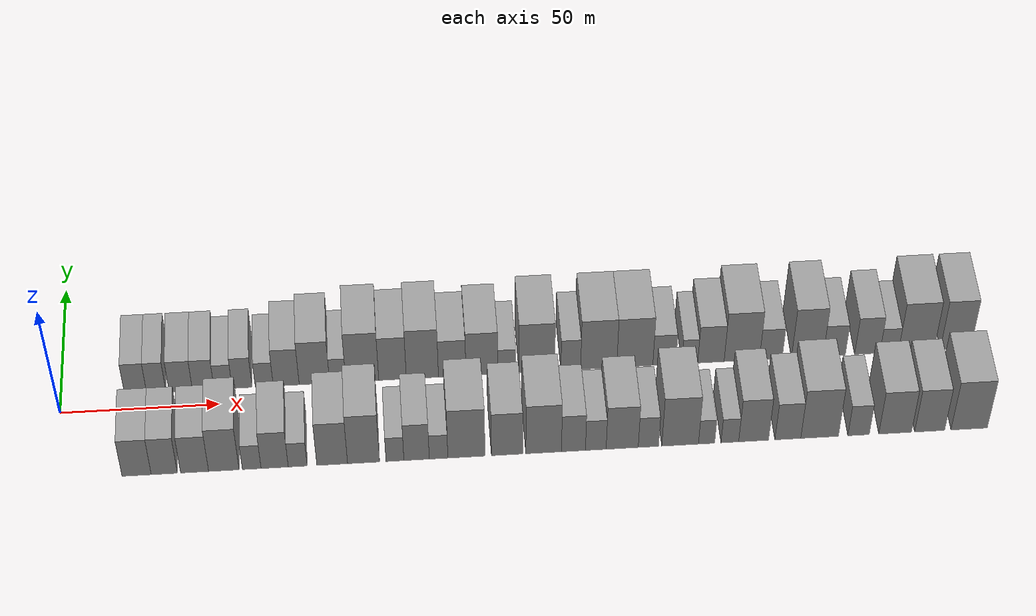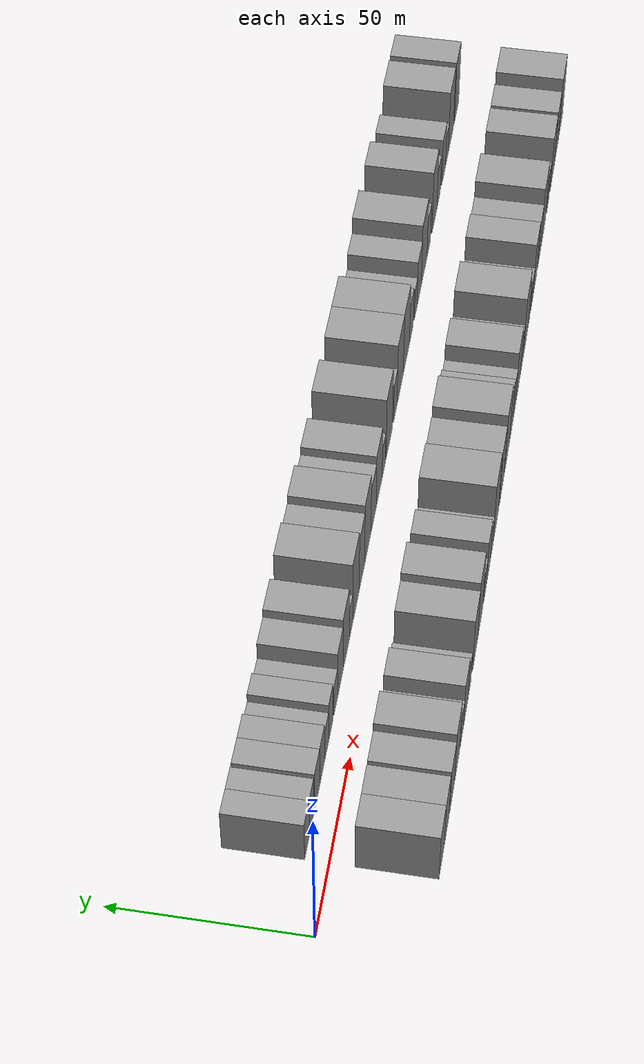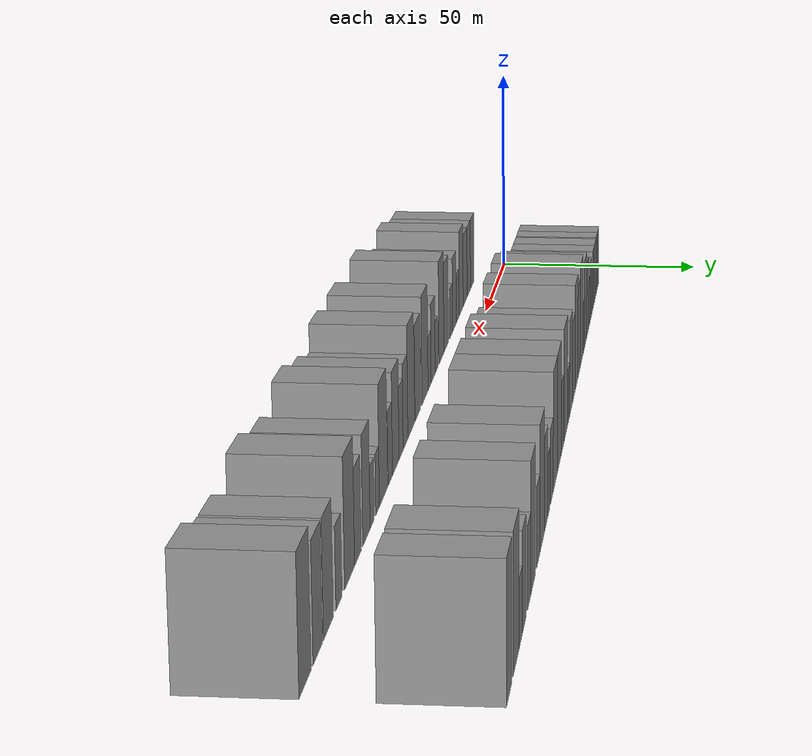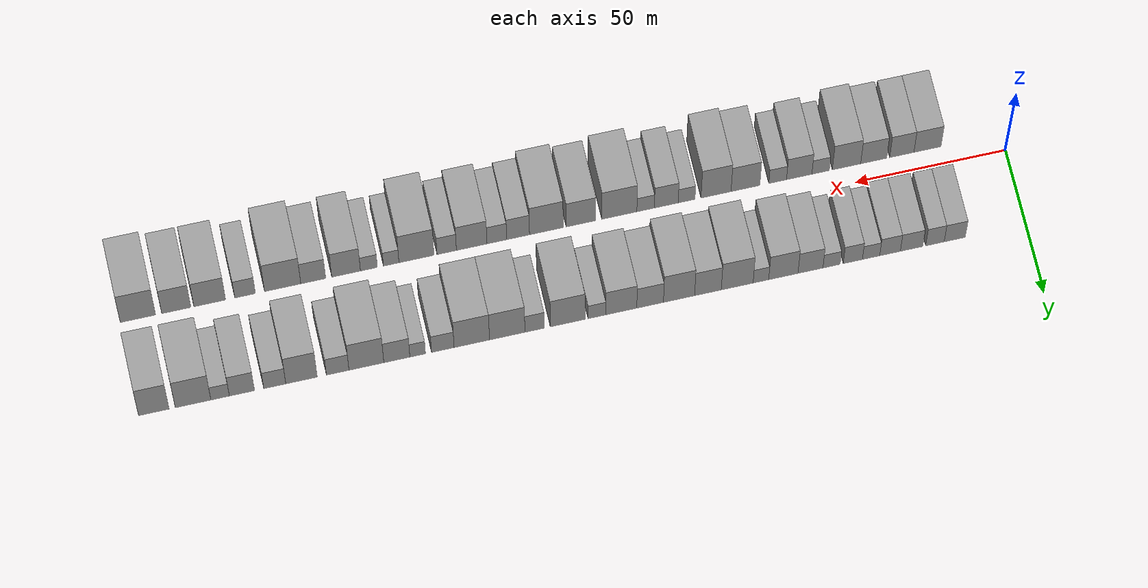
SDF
<sdf version="1.6">
 <world name="default">
  <scene>
   <sky><clouds><speed>12</speed></clouds></sky>
   <ambient>0.4 0.4 0.4 1</ambient>
   <background>0.7 0.7 0.7 1</background>
   <shadows>1</shadows>
  </scene>
  <gravity>0 0 -9.8066</gravity>
  <magnetic_field>6e-06 2.3e-05 -4.2e-05</magnetic_field>
  <physics default="0" name="default_physics" type="ode">
   <ode>
    <solver>
     <type>quick</type>
     <iters>10</iters>
     <sor>1.0</sor>
     <use_dynamic_moi_rescaling>0</use_dynamic_moi_rescaling>
    </solver>
    <constraints>
     <cfm>0</cfm>
     <erp>0.2</erp>
     <contact_max_correcting_vel>100</contact_max_correcting_vel>
     <contact_surface_layer>0.001</contact_surface_layer>
    </constraints>
   </ode>
   <max_step_size>0.004</max_step_size>
   <real_time_factor>1</real_time_factor>
   <real_time_update_rate>250</real_time_update_rate>
  </physics>
  <light name="sun" type="directional">
   <pose>0 0 10 0 0 0</pose>
   <diffuse>0.8 0.8 0.8 1</diffuse>
   <specular>0.2 0.2 0.2 1</specular>
   <attenuation>
    <range>1000</range>
    <constant>0.9</constant>
    <linear>0.01</linear>
    <quadratic>0.001</quadratic>
   </attenuation>
   <direction>-0.5 0.1 -0.9</direction>
  </light>
  <model name="building_1">
   <static>1</static>
   <pose>23.4826 16.0000 0 0.000000 0.000000 1.570796</pose>
   <link name="link">
    <pose>0 0 7.50 0 0 0</pose>
    <collision name="collision"><geometry><box><size>20.0000 6.9651 15.0000</size></box></geometry></collision>
    <visual name="visual">
     <cast_shadows>0</cast_shadows>
     <geometry><box><size>20.0000 6.9651 15.0000</size></box></geometry>
     <material>
      <script>
       <uri>model://grey_wall/materials/scripts</uri>
       <uri>model://grey_wall/materials/textures</uri>
       <name>vrc/grey_wall</name>
      </script>
     </material>
    </visual>
   </link>
  </model>
  <model name="building_2">
   <static>1</static>
   <pose>30.0174 16.0000 0 0.000000 0.000000 1.570796</pose>
   <link name="link">
    <pose>0 0 7.50 0 0 0</pose>
    <collision name="collision"><geometry><box><size>20.0000 6.1046 15.0000</size></box></geometry></collision>
    <visual name="visual">
     <cast_shadows>0</cast_shadows>
     <geometry><box><size>20.0000 6.1046 15.0000</size></box></geometry>
     <material>
      <script>
       <uri>model://grey_wall/materials/scripts</uri>
       <uri>model://grey_wall/materials/textures</uri>
       <name>vrc/grey_wall</name>
      </script>
     </material>
    </visual>
   </link>
  </model>
  <model name="building_3">
   <static>1</static>
   <pose>37.7684 16.0000 0 0.000000 0.000000 1.570796</pose>
   <link name="link">
    <pose>0 0 7.50 0 0 0</pose>
    <collision name="collision"><geometry><box><size>20.0000 7.3974 15.0000</size></box></geometry></collision>
    <visual name="visual">
     <cast_shadows>0</cast_shadows>
     <geometry><box><size>20.0000 7.3974 15.0000</size></box></geometry>
     <material>
      <script>
       <uri>model://grey_wall/materials/scripts</uri>
       <uri>model://grey_wall/materials/textures</uri>
       <name>vrc/grey_wall</name>
      </script>
     </material>
    </visual>
   </link>
  </model>
  <model name="building_4">
   <static>1</static>
   <pose>44.8814 16.0000 0 0.000000 0.000000 1.570796</pose>
   <link name="link">
    <pose>0 0 7.50 0 0 0</pose>
    <collision name="collision"><geometry><box><size>20.0000 6.8285 15.0000</size></box></geometry></collision>
    <visual name="visual">
     <cast_shadows>0</cast_shadows>
     <geometry><box><size>20.0000 6.8285 15.0000</size></box></geometry>
     <material>
      <script>
       <uri>model://grey_wall/materials/scripts</uri>
       <uri>model://grey_wall/materials/textures</uri>
       <name>vrc/grey_wall</name>
      </script>
     </material>
    </visual>
   </link>
  </model>
  <model name="building_5">
   <static>1</static>
   <pose>51.1552 16.0000 0 0.000000 0.000000 1.570796</pose>
   <link name="link">
    <pose>0 0 6.00 0 0 0</pose>
    <collision name="collision"><geometry><box><size>20.0000 5.7192 12.0000</size></box></geometry></collision>
    <visual name="visual">
     <cast_shadows>0</cast_shadows>
     <geometry><box><size>20.0000 5.7192 12.0000</size></box></geometry>
     <material>
      <script>
       <uri>model://grey_wall/materials/scripts</uri>
       <uri>model://grey_wall/materials/textures</uri>
       <name>vrc/grey_wall</name>
      </script>
     </material>
    </visual>
   </link>
  </model>
  <model name="building_6">
   <static>1</static>
   <pose>57.1773 16.0000 0 0.000000 0.000000 1.570796</pose>
   <link name="link">
    <pose>0 0 7.50 0 0 0</pose>
    <collision name="collision"><geometry><box><size>20.0000 6.3250 15.0000</size></box></geometry></collision>
    <visual name="visual">
     <cast_shadows>0</cast_shadows>
     <geometry><box><size>20.0000 6.3250 15.0000</size></box></geometry>
     <material>
      <script>
       <uri>model://grey_wall/materials/scripts</uri>
       <uri>model://grey_wall/materials/textures</uri>
       <name>vrc/grey_wall</name>
      </script>
     </material>
    </visual>
   </link>
  </model>
  <model name="building_7">
   <static>1</static>
   <pose>64.1905 16.0000 0 0.000000 0.000000 1.570796</pose>
   <link name="link">
    <pose>0 0 6.00 0 0 0</pose>
    <collision name="collision"><geometry><box><size>20.0000 5.7014 12.0000</size></box></geometry></collision>
    <visual name="visual">
     <cast_shadows>0</cast_shadows>
     <geometry><box><size>20.0000 5.7014 12.0000</size></box></geometry>
     <material>
      <script>
       <uri>model://grey_wall/materials/scripts</uri>
       <uri>model://grey_wall/materials/textures</uri>
       <name>vrc/grey_wall</name>
      </script>
     </material>
    </visual>
   </link>
  </model>
  <model name="building_8">
   <static>1</static>
   <pose>71.1540 16.0000 0 0.000000 0.000000 1.570796</pose>
   <link name="link">
    <pose>0 0 9.00 0 0 0</pose>
    <collision name="collision"><geometry><box><size>20.0000 8.2257 18.0000</size></box></geometry></collision>
    <visual name="visual">
     <cast_shadows>0</cast_shadows>
     <geometry><box><size>20.0000 8.2257 18.0000</size></box></geometry>
     <material>
      <script>
       <uri>model://grey_wall/materials/scripts</uri>
       <uri>model://grey_wall/materials/textures</uri>
       <name>vrc/grey_wall</name>
      </script>
     </material>
    </visual>
   </link>
  </model>
  <model name="building_9">
   <static>1</static>
   <pose>80.0951 16.0000 0 0.000000 0.000000 1.570796</pose>
   <link name="link">
    <pose>0 0 10.50 0 0 0</pose>
    <collision name="collision"><geometry><box><size>20.0000 9.6565 21.0000</size></box></geometry></collision>
    <visual name="visual">
     <cast_shadows>0</cast_shadows>
     <geometry><box><size>20.0000 9.6565 21.0000</size></box></geometry>
     <material>
      <script>
       <uri>model://grey_wall/materials/scripts</uri>
       <uri>model://grey_wall/materials/textures</uri>
       <name>vrc/grey_wall</name>
      </script>
     </material>
    </visual>
   </link>
  </model>
  <model name="building_10">
   <static>1</static>
   <pose>87.4865 16.0000 0 0.000000 0.000000 1.570796</pose>
   <link name="link">
    <pose>0 0 6.00 0 0 0</pose>
    <collision name="collision"><geometry><box><size>20.0000 5.1263 12.0000</size></box></geometry></collision>
    <visual name="visual">
     <cast_shadows>0</cast_shadows>
     <geometry><box><size>20.0000 5.1263 12.0000</size></box></geometry>
     <material>
      <script>
       <uri>model://grey_wall/materials/scripts</uri>
       <uri>model://grey_wall/materials/textures</uri>
       <name>vrc/grey_wall</name>
      </script>
     </material>
    </visual>
   </link>
  </model>
  <model name="building_11">
   <static>1</static>
   <pose>95.2963 16.0000 0 0.000000 0.000000 1.570796</pose>
   <link name="link">
    <pose>0 0 12.00 0 0 0</pose>
    <collision name="collision"><geometry><box><size>20.0000 10.4932 24.0000</size></box></geometry></collision>
    <visual name="visual">
     <cast_shadows>0</cast_shadows>
     <geometry><box><size>20.0000 10.4932 24.0000</size></box></geometry>
     <material>
      <script>
       <uri>model://grey_wall/materials/scripts</uri>
       <uri>model://grey_wall/materials/textures</uri>
       <name>vrc/grey_wall</name>
      </script>
     </material>
    </visual>
   </link>
  </model>
  <model name="building_12">
   <static>1</static>
   <pose>104.9259 16.0000 0 0.000000 0.000000 1.570796</pose>
   <link name="link">
    <pose>0 0 10.50 0 0 0</pose>
    <collision name="collision"><geometry><box><size>20.0000 8.7661 21.0000</size></box></geometry></collision>
    <visual name="visual">
     <cast_shadows>0</cast_shadows>
     <geometry><box><size>20.0000 8.7661 21.0000</size></box></geometry>
     <material>
      <script>
       <uri>model://grey_wall/materials/scripts</uri>
       <uri>model://grey_wall/materials/textures</uri>
       <name>vrc/grey_wall</name>
      </script>
     </material>
    </visual>
   </link>
  </model>
  <model name="building_13">
   <static>1</static>
   <pose>114.4245 16.0000 0 0.000000 0.000000 1.570796</pose>
   <link name="link">
    <pose>0 0 12.00 0 0 0</pose>
    <collision name="collision"><geometry><box><size>20.0000 10.2310 24.0000</size></box></geometry></collision>
    <visual name="visual">
     <cast_shadows>0</cast_shadows>
     <geometry><box><size>20.0000 10.2310 24.0000</size></box></geometry>
     <material>
      <script>
       <uri>model://grey_wall/materials/scripts</uri>
       <uri>model://grey_wall/materials/textures</uri>
       <name>vrc/grey_wall</name>
      </script>
     </material>
    </visual>
   </link>
  </model>
  <model name="building_14">
   <static>1</static>
   <pose>123.9174 16.0000 0 0.000000 0.000000 1.570796</pose>
   <link name="link">
    <pose>0 0 9.00 0 0 0</pose>
    <collision name="collision"><geometry><box><size>20.0000 8.7548 18.0000</size></box></geometry></collision>
    <visual name="visual">
     <cast_shadows>0</cast_shadows>
     <geometry><box><size>20.0000 8.7548 18.0000</size></box></geometry>
     <material>
      <script>
       <uri>model://grey_wall/materials/scripts</uri>
       <uri>model://grey_wall/materials/textures</uri>
       <name>vrc/grey_wall</name>
      </script>
     </material>
    </visual>
   </link>
  </model>
  <model name="building_15">
   <static>1</static>
   <pose>133.3768 16.0000 0 0.000000 0.000000 1.570796</pose>
   <link name="link">
    <pose>0 0 10.50 0 0 0</pose>
    <collision name="collision"><geometry><box><size>20.0000 10.1641 21.0000</size></box></geometry></collision>
    <visual name="visual">
     <cast_shadows>0</cast_shadows>
     <geometry><box><size>20.0000 10.1641 21.0000</size></box></geometry>
     <material>
      <script>
       <uri>model://grey_wall/materials/scripts</uri>
       <uri>model://grey_wall/materials/textures</uri>
       <name>vrc/grey_wall</name>
      </script>
     </material>
    </visual>
   </link>
  </model>
  <model name="building_16">
   <static>1</static>
   <pose>141.3605 16.0000 0 0.000000 0.000000 1.570796</pose>
   <link name="link">
    <pose>0 0 6.00 0 0 0</pose>
    <collision name="collision"><geometry><box><size>20.0000 5.8034 12.0000</size></box></geometry></collision>
    <visual name="visual">
     <cast_shadows>0</cast_shadows>
     <geometry><box><size>20.0000 5.8034 12.0000</size></box></geometry>
     <material>
      <script>
       <uri>model://grey_wall/materials/scripts</uri>
       <uri>model://grey_wall/materials/textures</uri>
       <name>vrc/grey_wall</name>
      </script>
     </material>
    </visual>
   </link>
  </model>
  <model name="building_17">
   <static>1</static>
   <pose>150.9504 16.0000 0 0.000000 0.000000 1.570796</pose>
   <link name="link">
    <pose>0 0 12.00 0 0 0</pose>
    <collision name="collision"><geometry><box><size>20.0000 11.3764 24.0000</size></box></geometry></collision>
    <visual name="visual">
     <cast_shadows>0</cast_shadows>
     <geometry><box><size>20.0000 11.3764 24.0000</size></box></geometry>
     <material>
      <script>
       <uri>model://grey_wall/materials/scripts</uri>
       <uri>model://grey_wall/materials/textures</uri>
       <name>vrc/grey_wall</name>
      </script>
     </material>
    </visual>
   </link>
  </model>
  <model name="building_18">
   <static>1</static>
   <pose>161.7898 16.0000 0 0.000000 0.000000 1.570796</pose>
   <link name="link">
    <pose>0 0 7.50 0 0 0</pose>
    <collision name="collision"><geometry><box><size>20.0000 6.3024 15.0000</size></box></geometry></collision>
    <visual name="visual">
     <cast_shadows>0</cast_shadows>
     <geometry><box><size>20.0000 6.3024 15.0000</size></box></geometry>
     <material>
      <script>
       <uri>model://grey_wall/materials/scripts</uri>
       <uri>model://grey_wall/materials/textures</uri>
       <name>vrc/grey_wall</name>
      </script>
     </material>
    </visual>
   </link>
  </model>
  <model name="building_19">
   <static>1</static>
   <pose>170.7327 16.0000 0 0.000000 0.000000 1.570796</pose>
   <link name="link">
    <pose>0 0 12.00 0 0 0</pose>
    <collision name="collision"><geometry><box><size>20.0000 11.5834 24.0000</size></box></geometry></collision>
    <visual name="visual">
     <cast_shadows>0</cast_shadows>
     <geometry><box><size>20.0000 11.5834 24.0000</size></box></geometry>
     <material>
      <script>
       <uri>model://grey_wall/materials/scripts</uri>
       <uri>model://grey_wall/materials/textures</uri>
       <name>vrc/grey_wall</name>
      </script>
     </material>
    </visual>
   </link>
  </model>
  <model name="building_20">
   <static>1</static>
   <pose>182.3128 16.0000 0 0.000000 0.000000 1.570796</pose>
   <link name="link">
    <pose>0 0 12.00 0 0 0</pose>
    <collision name="collision"><geometry><box><size>20.0000 11.5768 24.0000</size></box></geometry></collision>
    <visual name="visual">
     <cast_shadows>0</cast_shadows>
     <geometry><box><size>20.0000 11.5768 24.0000</size></box></geometry>
     <material>
      <script>
       <uri>model://grey_wall/materials/scripts</uri>
       <uri>model://grey_wall/materials/textures</uri>
       <name>vrc/grey_wall</name>
      </script>
     </material>
    </visual>
   </link>
  </model>
  <model name="building_21">
   <static>1</static>
   <pose>191.7797 16.0000 0 0.000000 0.000000 1.570796</pose>
   <link name="link">
    <pose>0 0 7.50 0 0 0</pose>
    <collision name="collision"><geometry><box><size>20.0000 7.3570 15.0000</size></box></geometry></collision>
    <visual name="visual">
     <cast_shadows>0</cast_shadows>
     <geometry><box><size>20.0000 7.3570 15.0000</size></box></geometry>
     <material>
      <script>
       <uri>model://grey_wall/materials/scripts</uri>
       <uri>model://grey_wall/materials/textures</uri>
       <name>vrc/grey_wall</name>
      </script>
     </material>
    </visual>
   </link>
  </model>
  <model name="building_22">
   <static>1</static>
   <pose>199.9924 16.0000 0 0.000000 0.000000 1.570796</pose>
   <link name="link">
    <pose>0 0 6.00 0 0 0</pose>
    <collision name="collision"><geometry><box><size>20.0000 5.0683 12.0000</size></box></geometry></collision>
    <visual name="visual">
     <cast_shadows>0</cast_shadows>
     <geometry><box><size>20.0000 5.0683 12.0000</size></box></geometry>
     <material>
      <script>
       <uri>model://grey_wall/materials/scripts</uri>
       <uri>model://grey_wall/materials/textures</uri>
       <name>vrc/grey_wall</name>
      </script>
     </material>
    </visual>
   </link>
  </model>
  <model name="building_23">
   <static>1</static>
   <pose>206.7731 16.0000 0 0.000000 0.000000 1.570796</pose>
   <link name="link">
    <pose>0 0 9.00 0 0 0</pose>
    <collision name="collision"><geometry><box><size>20.0000 8.4931 18.0000</size></box></geometry></collision>
    <visual name="visual">
     <cast_shadows>0</cast_shadows>
     <geometry><box><size>20.0000 8.4931 18.0000</size></box></geometry>
     <material>
      <script>
       <uri>model://grey_wall/materials/scripts</uri>
       <uri>model://grey_wall/materials/textures</uri>
       <name>vrc/grey_wall</name>
      </script>
     </material>
    </visual>
   </link>
  </model>
  <model name="building_24">
   <static>1</static>
   <pose>216.7002 16.0000 0 0.000000 0.000000 1.570796</pose>
   <link name="link">
    <pose>0 0 12.00 0 0 0</pose>
    <collision name="collision"><geometry><box><size>20.0000 11.3611 24.0000</size></box></geometry></collision>
    <visual name="visual">
     <cast_shadows>0</cast_shadows>
     <geometry><box><size>20.0000 11.3611 24.0000</size></box></geometry>
     <material>
      <script>
       <uri>model://grey_wall/materials/scripts</uri>
       <uri>model://grey_wall/materials/textures</uri>
       <name>vrc/grey_wall</name>
      </script>
     </material>
    </visual>
   </link>
  </model>
  <model name="building_25">
   <static>1</static>
   <pose>226.0487 16.0000 0 0.000000 0.000000 1.570796</pose>
   <link name="link">
    <pose>0 0 7.50 0 0 0</pose>
    <collision name="collision"><geometry><box><size>20.0000 7.3358 15.0000</size></box></geometry></collision>
    <visual name="visual">
     <cast_shadows>0</cast_shadows>
     <geometry><box><size>20.0000 7.3358 15.0000</size></box></geometry>
     <material>
      <script>
       <uri>model://grey_wall/materials/scripts</uri>
       <uri>model://grey_wall/materials/textures</uri>
       <name>vrc/grey_wall</name>
      </script>
     </material>
    </visual>
   </link>
  </model>
  <model name="building_26">
   <static>1</static>
   <pose>237.8275 16.0000 0 0.000000 0.000000 1.570796</pose>
   <link name="link">
    <pose>0 0 12.00 0 0 0</pose>
    <collision name="collision"><geometry><box><size>20.0000 10.2218 24.0000</size></box></geometry></collision>
    <visual name="visual">
     <cast_shadows>0</cast_shadows>
     <geometry><box><size>20.0000 10.2218 24.0000</size></box></geometry>
     <material>
      <script>
       <uri>model://grey_wall/materials/scripts</uri>
       <uri>model://grey_wall/materials/textures</uri>
       <name>vrc/grey_wall</name>
      </script>
     </material>
    </visual>
   </link>
  </model>
  <model name="building_27">
   <static>1</static>
   <pose>246.5218 16.0000 0 0.000000 0.000000 1.570796</pose>
   <link name="link">
    <pose>0 0 7.50 0 0 0</pose>
    <collision name="collision"><geometry><box><size>20.0000 7.1667 15.0000</size></box></geometry></collision>
    <visual name="visual">
     <cast_shadows>0</cast_shadows>
     <geometry><box><size>20.0000 7.1667 15.0000</size></box></geometry>
     <material>
      <script>
       <uri>model://grey_wall/materials/scripts</uri>
       <uri>model://grey_wall/materials/textures</uri>
       <name>vrc/grey_wall</name>
      </script>
     </material>
    </visual>
   </link>
  </model>
  <model name="building_28">
   <static>1</static>
   <pose>257.1931 16.0000 0 0.000000 0.000000 1.570796</pose>
   <link name="link">
    <pose>0 0 9.00 0 0 0</pose>
    <collision name="collision"><geometry><box><size>20.0000 8.1760 18.0000</size></box></geometry></collision>
    <visual name="visual">
     <cast_shadows>0</cast_shadows>
     <geometry><box><size>20.0000 8.1760 18.0000</size></box></geometry>
     <material>
      <script>
       <uri>model://grey_wall/materials/scripts</uri>
       <uri>model://grey_wall/materials/textures</uri>
       <name>vrc/grey_wall</name>
      </script>
     </material>
    </visual>
   </link>
  </model>
  <model name="building_29">
   <static>1</static>
   <pose>264.2778 16.0000 0 0.000000 0.000000 1.570796</pose>
   <link name="link">
    <pose>0 0 6.00 0 0 0</pose>
    <collision name="collision"><geometry><box><size>20.0000 5.9934 12.0000</size></box></geometry></collision>
    <visual name="visual">
     <cast_shadows>0</cast_shadows>
     <geometry><box><size>20.0000 5.9934 12.0000</size></box></geometry>
     <material>
      <script>
       <uri>model://grey_wall/materials/scripts</uri>
       <uri>model://grey_wall/materials/textures</uri>
       <name>vrc/grey_wall</name>
      </script>
     </material>
    </visual>
   </link>
  </model>
  <model name="building_30">
   <static>1</static>
   <pose>273.0438 16.0000 0 0.000000 0.000000 1.570796</pose>
   <link name="link">
    <pose>0 0 12.00 0 0 0</pose>
    <collision name="collision"><geometry><box><size>20.0000 11.5386 24.0000</size></box></geometry></collision>
    <visual name="visual">
     <cast_shadows>0</cast_shadows>
     <geometry><box><size>20.0000 11.5386 24.0000</size></box></geometry>
     <material>
      <script>
       <uri>model://grey_wall/materials/scripts</uri>
       <uri>model://grey_wall/materials/textures</uri>
       <name>vrc/grey_wall</name>
      </script>
     </material>
    </visual>
   </link>
  </model>
  <model name="building_31">
   <static>1</static>
   <pose>285.7618 16.0000 0 0.000000 0.000000 1.570796</pose>
   <link name="link">
    <pose>0 0 12.00 0 0 0</pose>
    <collision name="collision"><geometry><box><size>20.0000 9.8973 24.0000</size></box></geometry></collision>
    <visual name="visual">
     <cast_shadows>0</cast_shadows>
     <geometry><box><size>20.0000 9.8973 24.0000</size></box></geometry>
     <material>
      <script>
       <uri>model://grey_wall/materials/scripts</uri>
       <uri>model://grey_wall/materials/textures</uri>
       <name>vrc/grey_wall</name>
      </script>
     </material>
    </visual>
   </link>
  </model>
  <model name="building_32">
   <static>1</static>
   <pose>24.4980 -16.0000 0 0.000000 0.000000 1.570796</pose>
   <link name="link">
    <pose>0 0 9.00 0 0 0</pose>
    <collision name="collision"><geometry><box><size>20.0000 8.9959 18.0000</size></box></geometry></collision>
    <visual name="visual">
     <cast_shadows>0</cast_shadows>
     <geometry><box><size>20.0000 8.9959 18.0000</size></box></geometry>
     <material>
      <script>
       <uri>model://grey_wall/materials/scripts</uri>
       <uri>model://grey_wall/materials/textures</uri>
       <name>vrc/grey_wall</name>
      </script>
     </material>
    </visual>
   </link>
  </model>
  <model name="building_33">
   <static>1</static>
   <pose>33.0297 -16.0000 0 0.000000 0.000000 1.570796</pose>
   <link name="link">
    <pose>0 0 9.00 0 0 0</pose>
    <collision name="collision"><geometry><box><size>20.0000 8.0675 18.0000</size></box></geometry></collision>
    <visual name="visual">
     <cast_shadows>0</cast_shadows>
     <geometry><box><size>20.0000 8.0675 18.0000</size></box></geometry>
     <material>
      <script>
       <uri>model://grey_wall/materials/scripts</uri>
       <uri>model://grey_wall/materials/textures</uri>
       <name>vrc/grey_wall</name>
      </script>
     </material>
    </visual>
   </link>
  </model>
  <model name="building_34">
   <static>1</static>
   <pose>42.3819 -16.0000 0 0.000000 0.000000 1.570796</pose>
   <link name="link">
    <pose>0 0 9.00 0 0 0</pose>
    <collision name="collision"><geometry><box><size>20.0000 8.6369 18.0000</size></box></geometry></collision>
    <visual name="visual">
     <cast_shadows>0</cast_shadows>
     <geometry><box><size>20.0000 8.6369 18.0000</size></box></geometry>
     <material>
      <script>
       <uri>model://grey_wall/materials/scripts</uri>
       <uri>model://grey_wall/materials/textures</uri>
       <name>vrc/grey_wall</name>
      </script>
     </material>
    </visual>
   </link>
  </model>
  <model name="building_35">
   <static>1</static>
   <pose>51.4155 -16.0000 0 0.000000 0.000000 1.570796</pose>
   <link name="link">
    <pose>0 0 10.50 0 0 0</pose>
    <collision name="collision"><geometry><box><size>20.0000 9.4304 21.0000</size></box></geometry></collision>
    <visual name="visual">
     <cast_shadows>0</cast_shadows>
     <geometry><box><size>20.0000 9.4304 21.0000</size></box></geometry>
     <material>
      <script>
       <uri>model://grey_wall/materials/scripts</uri>
       <uri>model://grey_wall/materials/textures</uri>
       <name>vrc/grey_wall</name>
      </script>
     </material>
    </visual>
   </link>
  </model>
  <model name="building_36">
   <static>1</static>
   <pose>60.0193 -16.0000 0 0.000000 0.000000 1.570796</pose>
   <link name="link">
    <pose>0 0 6.00 0 0 0</pose>
    <collision name="collision"><geometry><box><size>20.0000 5.7771 12.0000</size></box></geometry></collision>
    <visual name="visual">
     <cast_shadows>0</cast_shadows>
     <geometry><box><size>20.0000 5.7771 12.0000</size></box></geometry>
     <material>
      <script>
       <uri>model://grey_wall/materials/scripts</uri>
       <uri>model://grey_wall/materials/textures</uri>
       <name>vrc/grey_wall</name>
      </script>
     </material>
    </visual>
   </link>
  </model>
  <model name="building_37">
   <static>1</static>
   <pose>67.1112 -16.0000 0 0.000000 0.000000 1.570796</pose>
   <link name="link">
    <pose>0 0 9.00 0 0 0</pose>
    <collision name="collision"><geometry><box><size>20.0000 8.4066 18.0000</size></box></geometry></collision>
    <visual name="visual">
     <cast_shadows>0</cast_shadows>
     <geometry><box><size>20.0000 8.4066 18.0000</size></box></geometry>
     <material>
      <script>
       <uri>model://grey_wall/materials/scripts</uri>
       <uri>model://grey_wall/materials/textures</uri>
       <name>vrc/grey_wall</name>
      </script>
     </material>
    </visual>
   </link>
  </model>
  <model name="building_38">
   <static>1</static>
   <pose>74.2442 -16.0000 0 0.000000 0.000000 1.570796</pose>
   <link name="link">
    <pose>0 0 6.00 0 0 0</pose>
    <collision name="collision"><geometry><box><size>20.0000 5.8595 12.0000</size></box></geometry></collision>
    <visual name="visual">
     <cast_shadows>0</cast_shadows>
     <geometry><box><size>20.0000 5.8595 12.0000</size></box></geometry>
     <material>
      <script>
       <uri>model://grey_wall/materials/scripts</uri>
       <uri>model://grey_wall/materials/textures</uri>
       <name>vrc/grey_wall</name>
      </script>
     </material>
    </visual>
   </link>
  </model>
  <model name="building_39">
   <static>1</static>
   <pose>84.9373 -16.0000 0 0.000000 0.000000 1.570796</pose>
   <link name="link">
    <pose>0 0 10.50 0 0 0</pose>
    <collision name="collision"><geometry><box><size>20.0000 9.5266 21.0000</size></box></geometry></collision>
    <visual name="visual">
     <cast_shadows>0</cast_shadows>
     <geometry><box><size>20.0000 9.5266 21.0000</size></box></geometry>
     <material>
      <script>
       <uri>model://grey_wall/materials/scripts</uri>
       <uri>model://grey_wall/materials/textures</uri>
       <name>vrc/grey_wall</name>
      </script>
     </material>
    </visual>
   </link>
  </model>
  <model name="building_40">
   <static>1</static>
   <pose>94.6690 -16.0000 0 0.000000 0.000000 1.570796</pose>
   <link name="link">
    <pose>0 0 12.00 0 0 0</pose>
    <collision name="collision"><geometry><box><size>20.0000 9.9368 24.0000</size></box></geometry></collision>
    <visual name="visual">
     <cast_shadows>0</cast_shadows>
     <geometry><box><size>20.0000 9.9368 24.0000</size></box></geometry>
     <material>
      <script>
       <uri>model://grey_wall/materials/scripts</uri>
       <uri>model://grey_wall/materials/textures</uri>
       <name>vrc/grey_wall</name>
      </script>
     </material>
    </visual>
   </link>
  </model>
  <model name="building_41">
   <static>1</static>
   <pose>104.4112 -16.0000 0 0.000000 0.000000 1.570796</pose>
   <link name="link">
    <pose>0 0 6.00 0 0 0</pose>
    <collision name="collision"><geometry><box><size>20.0000 5.5477 12.0000</size></box></geometry></collision>
    <visual name="visual">
     <cast_shadows>0</cast_shadows>
     <geometry><box><size>20.0000 5.5477 12.0000</size></box></geometry>
     <material>
      <script>
       <uri>model://grey_wall/materials/scripts</uri>
       <uri>model://grey_wall/materials/textures</uri>
       <name>vrc/grey_wall</name>
      </script>
     </material>
    </visual>
   </link>
  </model>
  <model name="building_42">
   <static>1</static>
   <pose>111.1279 -16.0000 0 0.000000 0.000000 1.570796</pose>
   <link name="link">
    <pose>0 0 9.00 0 0 0</pose>
    <collision name="collision"><geometry><box><size>20.0000 7.8856 18.0000</size></box></geometry></collision>
    <visual name="visual">
     <cast_shadows>0</cast_shadows>
     <geometry><box><size>20.0000 7.8856 18.0000</size></box></geometry>
     <material>
      <script>
       <uri>model://grey_wall/materials/scripts</uri>
       <uri>model://grey_wall/materials/textures</uri>
       <name>vrc/grey_wall</name>
      </script>
     </material>
    </visual>
   </link>
  </model>
  <model name="building_43">
   <static>1</static>
   <pose>117.9548 -16.0000 0 0.000000 0.000000 1.570796</pose>
   <link name="link">
    <pose>0 0 6.00 0 0 0</pose>
    <collision name="collision"><geometry><box><size>20.0000 5.7682 12.0000</size></box></geometry></collision>
    <visual name="visual">
     <cast_shadows>0</cast_shadows>
     <geometry><box><size>20.0000 5.7682 12.0000</size></box></geometry>
     <material>
      <script>
       <uri>model://grey_wall/materials/scripts</uri>
       <uri>model://grey_wall/materials/textures</uri>
       <name>vrc/grey_wall</name>
      </script>
     </material>
    </visual>
   </link>
  </model>
  <model name="building_44">
   <static>1</static>
   <pose>126.6314 -16.0000 0 0.000000 0.000000 1.570796</pose>
   <link name="link">
    <pose>0 0 12.00 0 0 0</pose>
    <collision name="collision"><geometry><box><size>20.0000 11.5851 24.0000</size></box></geometry></collision>
    <visual name="visual">
     <cast_shadows>0</cast_shadows>
     <geometry><box><size>20.0000 11.5851 24.0000</size></box></geometry>
     <material>
      <script>
       <uri>model://grey_wall/materials/scripts</uri>
       <uri>model://grey_wall/materials/textures</uri>
       <name>vrc/grey_wall</name>
      </script>
     </material>
    </visual>
   </link>
  </model>
  <model name="building_45">
   <static>1</static>
   <pose>139.2930 -16.0000 0 0.000000 0.000000 1.570796</pose>
   <link name="link">
    <pose>0 0 10.50 0 0 0</pose>
    <collision name="collision"><geometry><box><size>20.0000 9.7381 21.0000</size></box></geometry></collision>
    <visual name="visual">
     <cast_shadows>0</cast_shadows>
     <geometry><box><size>20.0000 9.7381 21.0000</size></box></geometry>
     <material>
      <script>
       <uri>model://grey_wall/materials/scripts</uri>
       <uri>model://grey_wall/materials/textures</uri>
       <name>vrc/grey_wall</name>
      </script>
     </material>
    </visual>
   </link>
  </model>
  <model name="building_46">
   <static>1</static>
   <pose>150.7039 -16.0000 0 0.000000 0.000000 1.570796</pose>
   <link name="link">
    <pose>0 0 12.00 0 0 0</pose>
    <collision name="collision"><geometry><box><size>20.0000 11.0838 24.0000</size></box></geometry></collision>
    <visual name="visual">
     <cast_shadows>0</cast_shadows>
     <geometry><box><size>20.0000 11.0838 24.0000</size></box></geometry>
     <material>
      <script>
       <uri>model://grey_wall/materials/scripts</uri>
       <uri>model://grey_wall/materials/textures</uri>
       <name>vrc/grey_wall</name>
      </script>
     </material>
    </visual>
   </link>
  </model>
  <model name="building_47">
   <static>1</static>
   <pose>160.0015 -16.0000 0 0.000000 0.000000 1.570796</pose>
   <link name="link">
    <pose>0 0 9.00 0 0 0</pose>
    <collision name="collision"><geometry><box><size>20.0000 7.5114 18.0000</size></box></geometry></collision>
    <visual name="visual">
     <cast_shadows>0</cast_shadows>
     <geometry><box><size>20.0000 7.5114 18.0000</size></box></geometry>
     <material>
      <script>
       <uri>model://grey_wall/materials/scripts</uri>
       <uri>model://grey_wall/materials/textures</uri>
       <name>vrc/grey_wall</name>
      </script>
     </material>
    </visual>
   </link>
  </model>
  <model name="building_48">
   <static>1</static>
   <pose>166.9920 -16.0000 0 0.000000 0.000000 1.570796</pose>
   <link name="link">
    <pose>0 0 7.50 0 0 0</pose>
    <collision name="collision"><geometry><box><size>20.0000 6.4696 15.0000</size></box></geometry></collision>
    <visual name="visual">
     <cast_shadows>0</cast_shadows>
     <geometry><box><size>20.0000 6.4696 15.0000</size></box></geometry>
     <material>
      <script>
       <uri>model://grey_wall/materials/scripts</uri>
       <uri>model://grey_wall/materials/textures</uri>
       <name>vrc/grey_wall</name>
      </script>
     </material>
    </visual>
   </link>
  </model>
  <model name="building_49">
   <static>1</static>
   <pose>175.2522 -16.0000 0 0.000000 0.000000 1.570796</pose>
   <link name="link">
    <pose>0 0 10.50 0 0 0</pose>
    <collision name="collision"><geometry><box><size>20.0000 10.0508 21.0000</size></box></geometry></collision>
    <visual name="visual">
     <cast_shadows>0</cast_shadows>
     <geometry><box><size>20.0000 10.0508 21.0000</size></box></geometry>
     <material>
      <script>
       <uri>model://grey_wall/materials/scripts</uri>
       <uri>model://grey_wall/materials/textures</uri>
       <name>vrc/grey_wall</name>
      </script>
     </material>
    </visual>
   </link>
  </model>
  <model name="building_50">
   <static>1</static>
   <pose>183.4634 -16.0000 0 0.000000 0.000000 1.570796</pose>
   <link name="link">
    <pose>0 0 7.50 0 0 0</pose>
    <collision name="collision"><geometry><box><size>20.0000 6.3716 15.0000</size></box></geometry></collision>
    <visual name="visual">
     <cast_shadows>0</cast_shadows>
     <geometry><box><size>20.0000 6.3716 15.0000</size></box></geometry>
     <material>
      <script>
       <uri>model://grey_wall/materials/scripts</uri>
       <uri>model://grey_wall/materials/textures</uri>
       <name>vrc/grey_wall</name>
      </script>
     </material>
    </visual>
   </link>
  </model>
  <model name="building_51">
   <static>1</static>
   <pose>193.3978 -16.0000 0 0.000000 0.000000 1.570796</pose>
   <link name="link">
    <pose>0 0 12.00 0 0 0</pose>
    <collision name="collision"><geometry><box><size>20.0000 11.4972 24.0000</size></box></geometry></collision>
    <visual name="visual">
     <cast_shadows>0</cast_shadows>
     <geometry><box><size>20.0000 11.4972 24.0000</size></box></geometry>
     <material>
      <script>
       <uri>model://grey_wall/materials/scripts</uri>
       <uri>model://grey_wall/materials/textures</uri>
       <name>vrc/grey_wall</name>
      </script>
     </material>
    </visual>
   </link>
  </model>
  <model name="building_52">
   <static>1</static>
   <pose>201.6903 -16.0000 0 0.000000 0.000000 1.570796</pose>
   <link name="link">
    <pose>0 0 6.00 0 0 0</pose>
    <collision name="collision"><geometry><box><size>20.0000 5.0877 12.0000</size></box></geometry></collision>
    <visual name="visual">
     <cast_shadows>0</cast_shadows>
     <geometry><box><size>20.0000 5.0877 12.0000</size></box></geometry>
     <material>
      <script>
       <uri>model://grey_wall/materials/scripts</uri>
       <uri>model://grey_wall/materials/textures</uri>
       <name>vrc/grey_wall</name>
      </script>
     </material>
    </visual>
   </link>
  </model>
  <model name="building_53">
   <static>1</static>
   <pose>209.0036 -16.0000 0 0.000000 0.000000 1.570796</pose>
   <link name="link">
    <pose>0 0 6.00 0 0 0</pose>
    <collision name="collision"><geometry><box><size>20.0000 5.5390 12.0000</size></box></geometry></collision>
    <visual name="visual">
     <cast_shadows>0</cast_shadows>
     <geometry><box><size>20.0000 5.5390 12.0000</size></box></geometry>
     <material>
      <script>
       <uri>model://grey_wall/materials/scripts</uri>
       <uri>model://grey_wall/materials/textures</uri>
       <name>vrc/grey_wall</name>
      </script>
     </material>
    </visual>
   </link>
  </model>
  <model name="building_54">
   <static>1</static>
   <pose>216.4703 -16.0000 0 0.000000 0.000000 1.570796</pose>
   <link name="link">
    <pose>0 0 10.50 0 0 0</pose>
    <collision name="collision"><geometry><box><size>20.0000 9.3943 21.0000</size></box></geometry></collision>
    <visual name="visual">
     <cast_shadows>0</cast_shadows>
     <geometry><box><size>20.0000 9.3943 21.0000</size></box></geometry>
     <material>
      <script>
       <uri>model://grey_wall/materials/scripts</uri>
       <uri>model://grey_wall/materials/textures</uri>
       <name>vrc/grey_wall</name>
      </script>
     </material>
    </visual>
   </link>
  </model>
  <model name="building_55">
   <static>1</static>
   <pose>227.2381 -16.0000 0 0.000000 0.000000 1.570796</pose>
   <link name="link">
    <pose>0 0 9.00 0 0 0</pose>
    <collision name="collision"><geometry><box><size>20.0000 8.1414 18.0000</size></box></geometry></collision>
    <visual name="visual">
     <cast_shadows>0</cast_shadows>
     <geometry><box><size>20.0000 8.1414 18.0000</size></box></geometry>
     <material>
      <script>
       <uri>model://grey_wall/materials/scripts</uri>
       <uri>model://grey_wall/materials/textures</uri>
       <name>vrc/grey_wall</name>
      </script>
     </material>
    </visual>
   </link>
  </model>
  <model name="building_56">
   <static>1</static>
   <pose>237.2337 -16.0000 0 0.000000 0.000000 1.570796</pose>
   <link name="link">
    <pose>0 0 12.00 0 0 0</pose>
    <collision name="collision"><geometry><box><size>20.0000 11.8498 24.0000</size></box></geometry></collision>
    <visual name="visual">
     <cast_shadows>0</cast_shadows>
     <geometry><box><size>20.0000 11.8498 24.0000</size></box></geometry>
     <material>
      <script>
       <uri>model://grey_wall/materials/scripts</uri>
       <uri>model://grey_wall/materials/textures</uri>
       <name>vrc/grey_wall</name>
      </script>
     </material>
    </visual>
   </link>
  </model>
  <model name="building_57">
   <static>1</static>
   <pose>249.5297 -16.0000 0 0.000000 0.000000 1.570796</pose>
   <link name="link">
    <pose>0 0 7.50 0 0 0</pose>
    <collision name="collision"><geometry><box><size>20.0000 6.7421 15.0000</size></box></geometry></collision>
    <visual name="visual">
     <cast_shadows>0</cast_shadows>
     <geometry><box><size>20.0000 6.7421 15.0000</size></box></geometry>
     <material>
      <script>
       <uri>model://grey_wall/materials/scripts</uri>
       <uri>model://grey_wall/materials/textures</uri>
       <name>vrc/grey_wall</name>
      </script>
     </material>
    </visual>
   </link>
  </model>
  <model name="building_58">
   <static>1</static>
   <pose>261.0687 -16.0000 0 0.000000 0.000000 1.570796</pose>
   <link name="link">
    <pose>0 0 10.50 0 0 0</pose>
    <collision name="collision"><geometry><box><size>20.0000 10.3360 21.0000</size></box></geometry></collision>
    <visual name="visual">
     <cast_shadows>0</cast_shadows>
     <geometry><box><size>20.0000 10.3360 21.0000</size></box></geometry>
     <material>
      <script>
       <uri>model://grey_wall/materials/scripts</uri>
       <uri>model://grey_wall/materials/textures</uri>
       <name>vrc/grey_wall</name>
      </script>
     </material>
    </visual>
   </link>
  </model>
  <model name="building_59">
   <static>1</static>
   <pose>271.9809 -16.0000 0 0.000000 0.000000 1.570796</pose>
   <link name="link">
    <pose>0 0 10.50 0 0 0</pose>
    <collision name="collision"><geometry><box><size>20.0000 9.4883 21.0000</size></box></geometry></collision>
    <visual name="visual">
     <cast_shadows>0</cast_shadows>
     <geometry><box><size>20.0000 9.4883 21.0000</size></box></geometry>
     <material>
      <script>
       <uri>model://grey_wall/materials/scripts</uri>
       <uri>model://grey_wall/materials/textures</uri>
       <name>vrc/grey_wall</name>
      </script>
     </material>
    </visual>
   </link>
  </model>
  <model name="building_60">
   <static>1</static>
   <pose>284.4816 -16.0000 0 0.000000 0.000000 1.570796</pose>
   <link name="link">
    <pose>0 0 12.00 0 0 0</pose>
    <collision name="collision"><geometry><box><size>20.0000 11.5131 24.0000</size></box></geometry></collision>
    <visual name="visual">
     <cast_shadows>0</cast_shadows>
     <geometry><box><size>20.0000 11.5131 24.0000</size></box></geometry>
     <material>
      <script>
       <uri>model://grey_wall/materials/scripts</uri>
       <uri>model://grey_wall/materials/textures</uri>
       <name>vrc/grey_wall</name>
      </script>
     </material>
    </visual>
   </link>
  </model>
 </world>
</sdf>
